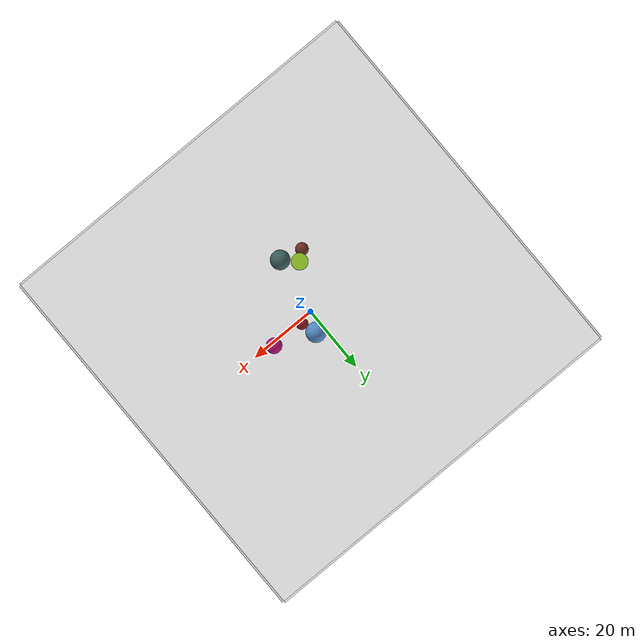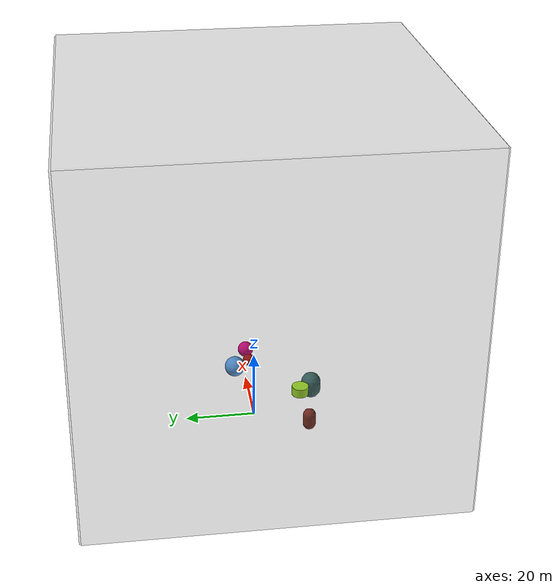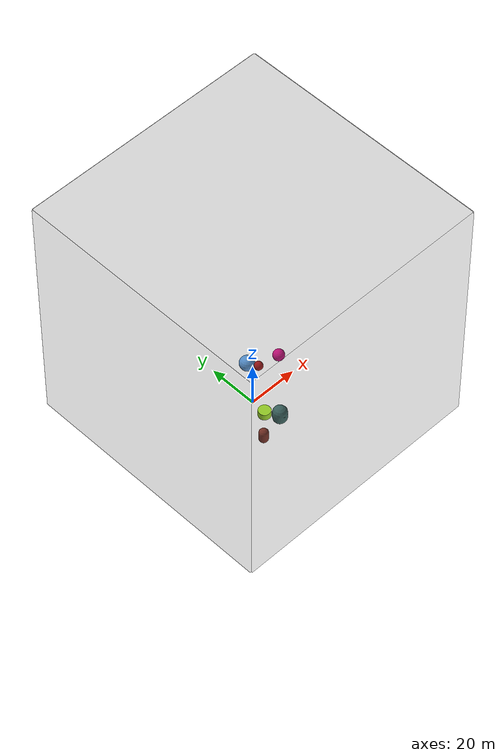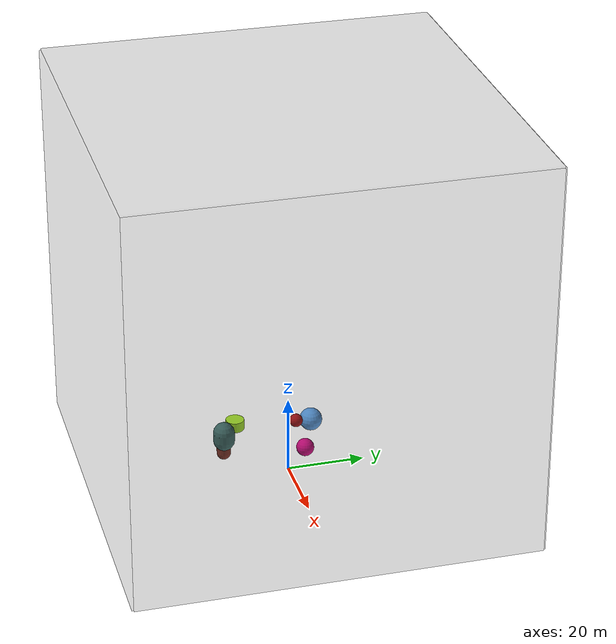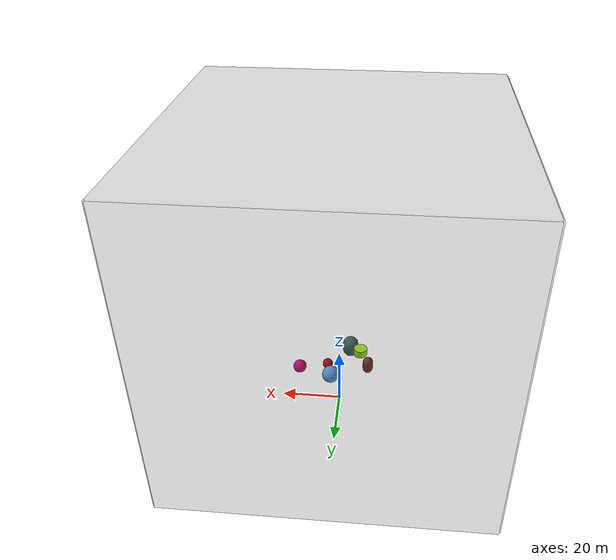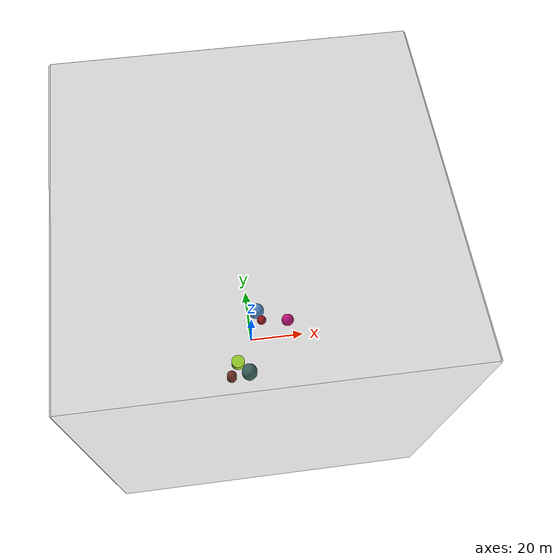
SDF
<!-- seed: 1718592691 -->
<sdf version='1.11'>
  <world name='world_0'>
    <gravity>0 0 -9.8066499999999994</gravity>
    <magnetic_field>5.5644999999999998e-06 2.2875799999999999e-05 -4.2388400000000002e-05</magnetic_field>
    <wind>
      <linear_velocity>2 4 9</linear_velocity>
    </wind>
    <physics default='false' type='ode'>
      <max_step_size>0.001</max_step_size>
      <real_time_factor>1</real_time_factor>
      <max_contacts>20</max_contacts>
    </physics>
    <model name='model_0'>
      <static>true</static>
      <self_collide>true</self_collide>
      <allow_auto_disable>true</allow_auto_disable>
      <enable_wind>false</enable_wind>
      <pose>-8.1204109110400129 -9.6773761119717694 2.20665761459373 0 0 0</pose>
      <link name='link_9696'>
        <pose>1.5841633516126237 -2.7465218656621193 9.2211319040780619 0 0 0</pose>
        <inertial>
          <pose>0 0 0 0 0 0</pose>
          <mass>1</mass>
          <inertia>
            <ixx>1</ixx>
            <ixy>0</ixy>
            <ixz>0</ixz>
            <iyy>1</iyy>
            <iyz>0</iyz>
            <izz>1</izz>
          </inertia>
        </inertial>
        <enable_wind>false</enable_wind>
        <collision name='collision_9696'>
          <pose>0 0 0 0 0 0</pose>
          <geometry>
            <cylinder>
              <radius>2.3817111365002956</radius>
              <length>2.6730405216484456</length>
            </cylinder>
          </geometry>
          <surface>
            <contact>
              <collide_bitmask>255</collide_bitmask>
            </contact>
            <friction>
              <ode>
                <mu>1</mu>
                <mu2>1</mu2>
                <slip1>0</slip1>
                <slip2>0</slip2>
                <fdir1>0 0 0</fdir1>
              </ode>
            </friction>
          </surface>
        </collision>
        <visual name='visual_9696'>
          <pose>0 0 0 0 0 0</pose>
          <geometry>
            <cylinder>
              <radius>2.3817111365002956</radius>
              <length>2.6730405216484456</length>
            </cylinder>
          </geometry>
          <cast_shadows>true</cast_shadows>
          <laser_retro>0</laser_retro>
          <transparency>0</transparency>
          <visibility_flags>4294967295</visibility_flags>
          <material>
            <ambient>0.699750125 0.96689111 0.163352266 1</ambient>
            <diffuse>0.699750125 0.96689111 0.163352266 1</diffuse>
            <specular>0 0 0 1</specular>
            <emissive>0 0 0 1</emissive>
            <render_order>0</render_order>
            <lighting>true</lighting>
            <double_sided>false</double_sided>
            <shader type='pixel'/>
          </material>
        </visual>
      </link>
      <link name='link_9697'>
        <pose>-1.1532210818182982 -5.1357976533158638 0.88036856735898339 0 0 0</pose>
        <inertial>
          <pose>0 0 0 0 0 0</pose>
          <mass>1</mass>
          <inertia>
            <ixx>1</ixx>
            <ixy>0</ixy>
            <ixz>0</ixz>
            <iyy>1</iyy>
            <iyz>0</iyz>
            <izz>1</izz>
          </inertia>
        </inertial>
        <enable_wind>false</enable_wind>
        <collision name='collision_9697'>
          <pose>0 0 0 0 0 0</pose>
          <geometry>
            <capsule>
              <radius>1.8394115626569623</radius>
              <length>2.7797236295579761</length>
            </capsule>
          </geometry>
          <surface>
            <contact>
              <collide_bitmask>255</collide_bitmask>
            </contact>
            <friction>
              <ode>
                <mu>1</mu>
                <mu2>1</mu2>
                <slip1>0</slip1>
                <slip2>0</slip2>
                <fdir1>0 0 0</fdir1>
              </ode>
            </friction>
          </surface>
        </collision>
        <visual name='visual_9697'>
          <pose>0 0 0 0 0 0</pose>
          <geometry>
            <capsule>
              <radius>1.8394115626569623</radius>
              <length>2.7797236295579761</length>
            </capsule>
          </geometry>
          <cast_shadows>true</cast_shadows>
          <laser_retro>0</laser_retro>
          <transparency>0</transparency>
          <visibility_flags>4294967295</visibility_flags>
          <material>
            <ambient>0.525312722 0.200585425 0.147615522 1</ambient>
            <diffuse>0.525312722 0.200585425 0.147615522 1</diffuse>
            <specular>0 0 0 1</specular>
            <emissive>0 0 0 1</emissive>
            <render_order>0</render_order>
            <lighting>true</lighting>
            <double_sided>false</double_sided>
            <shader type='pixel'/>
          </material>
        </visual>
      </link>
      <link name='link_9698'>
        <pose>5.4073401052223922 -6.5543886600089412 8.2231925246604547 0 0 0</pose>
        <inertial>
          <pose>0 0 0 0 0 0</pose>
          <mass>1</mass>
          <inertia>
            <ixx>1</ixx>
            <ixy>0</ixy>
            <ixz>0</ixz>
            <iyy>1</iyy>
            <iyz>0</iyz>
            <izz>1</izz>
          </inertia>
        </inertial>
        <enable_wind>false</enable_wind>
        <collision name='collision_9698'>
          <pose>0 0 0 0 0 0</pose>
          <geometry>
            <capsule>
              <radius>2.7746040245228922</radius>
              <length>2.1052765028635951</length>
            </capsule>
          </geometry>
          <surface>
            <contact>
              <collide_bitmask>255</collide_bitmask>
            </contact>
            <friction>
              <ode>
                <mu>1</mu>
                <mu2>1</mu2>
                <slip1>0</slip1>
                <slip2>0</slip2>
                <fdir1>0 0 0</fdir1>
              </ode>
            </friction>
          </surface>
        </collision>
        <visual name='visual_9698'>
          <pose>0 0 0 0 0 0</pose>
          <geometry>
            <capsule>
              <radius>2.7746040245228922</radius>
              <length>2.1052765028635951</length>
            </capsule>
          </geometry>
          <cast_shadows>true</cast_shadows>
          <laser_retro>0</laser_retro>
          <transparency>0</transparency>
          <visibility_flags>4294967295</visibility_flags>
          <material>
            <ambient>0.253123581 0.438459873 0.420266807 1</ambient>
            <diffuse>0.253123581 0.438459873 0.420266807 1</diffuse>
            <specular>0 0 0 1</specular>
            <emissive>0 0 0 1</emissive>
            <render_order>0</render_order>
            <lighting>true</lighting>
            <double_sided>false</double_sided>
            <shader type='pixel'/>
          </material>
        </visual>
      </link>
      <joint name='joint_6464' type='continuous'>
        <pose>0 0 0 0 0 0</pose>
        <parent>link_9696</parent>
        <child>link_9698</child>
        <axis>
          <xyz>0.41314901416877658 0.28695063132995124 0.86427265794465025</xyz>
          <limit>
            <lower>-inf</lower>
            <upper>inf</upper>
            <effort>inf</effort>
            <velocity>5.3353576984763009</velocity>
            <stiffness>100000000</stiffness>
            <dissipation>1</dissipation>
          </limit>
          <dynamics>
            <spring_reference>0</spring_reference>
            <spring_stiffness>0</spring_stiffness>
            <damping>0</damping>
            <friction>0</friction>
          </dynamics>
        </axis>
        <axis2>
          <xyz>0.54326392807299884 0.68251176936926639 0.48891920511177395</xyz>
          <limit>
            <lower>-inf</lower>
            <upper>inf</upper>
            <effort>inf</effort>
            <velocity>7.2660607916973499</velocity>
            <stiffness>100000000</stiffness>
            <dissipation>1</dissipation>
          </limit>
          <dynamics>
            <spring_reference>0</spring_reference>
            <spring_stiffness>0</spring_stiffness>
            <damping>0</damping>
            <friction>0</friction>
          </dynamics>
        </axis2>
      </joint>
      <joint name='joint_6465' type='gearbox'>
        <pose>0 0 0 0 0 0</pose>
        <parent>link_9698</parent>
        <child>link_9696</child>
        <axis>
          <xyz>0.52291159544644217 0.61548004280811153 0.5897014331444187</xyz>
          <limit>
            <lower>-inf</lower>
            <upper>inf</upper>
            <effort>inf</effort>
            <velocity>1.7194773542488562</velocity>
            <stiffness>100000000</stiffness>
            <dissipation>1</dissipation>
          </limit>
          <dynamics>
            <spring_reference>0</spring_reference>
            <spring_stiffness>0</spring_stiffness>
            <damping>0</damping>
            <friction>0</friction>
          </dynamics>
        </axis>
        <axis2>
          <xyz>0.86703691144737371 0.40425661770050586 0.29124488190034498</xyz>
          <limit>
            <lower>-inf</lower>
            <upper>inf</upper>
            <effort>inf</effort>
            <velocity>0.00076896144255322874</velocity>
            <stiffness>100000000</stiffness>
            <dissipation>1</dissipation>
          </limit>
          <dynamics>
            <spring_reference>0</spring_reference>
            <spring_stiffness>0</spring_stiffness>
            <damping>0</damping>
            <friction>0</friction>
          </dynamics>
        </axis2>
      </joint>
    </model>
    <model name='model_1'>
      <static>true</static>
      <self_collide>false</self_collide>
      <allow_auto_disable>true</allow_auto_disable>
      <enable_wind>false</enable_wind>
      <pose>9.5032296866960273 -0.65325296814477696 8.7417557123397653 0 0 0</pose>
      <link name='link_9699'>
        <pose>-7.0961905143635873 5.9685744626503094 6.5661362871623634 0 0 0</pose>
        <inertial>
          <pose>0 0 0 0 0 0</pose>
          <mass>1</mass>
          <inertia>
            <ixx>1</ixx>
            <ixy>0</ixy>
            <ixz>0</ixz>
            <iyy>1</iyy>
            <iyz>0</iyz>
            <izz>1</izz>
          </inertia>
        </inertial>
        <enable_wind>false</enable_wind>
        <collision name='collision_9699'>
          <pose>0 0 0 0 0 0</pose>
          <geometry>
            <sphere>
              <radius>2.8848990558518661</radius>
            </sphere>
          </geometry>
          <surface>
            <contact>
              <collide_bitmask>255</collide_bitmask>
            </contact>
            <friction>
              <ode>
                <mu>1</mu>
                <mu2>1</mu2>
                <slip1>0</slip1>
                <slip2>0</slip2>
                <fdir1>0 0 0</fdir1>
              </ode>
            </friction>
          </surface>
        </collision>
        <visual name='visual_9699'>
          <pose>0 0 0 0 0 0</pose>
          <geometry>
            <sphere>
              <radius>2.8848990558518661</radius>
            </sphere>
          </geometry>
          <cast_shadows>true</cast_shadows>
          <laser_retro>0</laser_retro>
          <transparency>0</transparency>
          <visibility_flags>4294967295</visibility_flags>
          <material>
            <ambient>0.371710867 0.652385652 0.941293836 1</ambient>
            <diffuse>0.371710867 0.652385652 0.941293836 1</diffuse>
            <specular>0 0 0 1</specular>
            <emissive>0 0 0 1</emissive>
            <render_order>0</render_order>
            <lighting>true</lighting>
            <double_sided>false</double_sided>
            <shader type='pixel'/>
          </material>
        </visual>
      </link>
      <link name='link_9700'>
        <pose>-5.6574966649034515 1.7047011655640159 7.5793375206651206 0 0 0</pose>
        <inertial>
          <pose>0 0 0 0 0 0</pose>
          <mass>1</mass>
          <inertia>
            <ixx>1</ixx>
            <ixy>0</ixy>
            <ixz>0</ixz>
            <iyy>1</iyy>
            <iyz>0</iyz>
            <izz>1</izz>
          </inertia>
        </inertial>
        <enable_wind>false</enable_wind>
        <collision name='collision_9700'>
          <pose>0 0 0 0 0 0</pose>
          <geometry>
            <sphere>
              <radius>1.6817120145282336</radius>
            </sphere>
          </geometry>
          <surface>
            <contact>
              <collide_bitmask>255</collide_bitmask>
            </contact>
            <friction>
              <ode>
                <mu>1</mu>
                <mu2>1</mu2>
                <slip1>0</slip1>
                <slip2>0</slip2>
                <fdir1>0 0 0</fdir1>
              </ode>
            </friction>
          </surface>
        </collision>
        <visual name='visual_9700'>
          <pose>0 0 0 0 0 0</pose>
          <geometry>
            <sphere>
              <radius>1.6817120145282336</radius>
            </sphere>
          </geometry>
          <cast_shadows>true</cast_shadows>
          <laser_retro>0</laser_retro>
          <transparency>0</transparency>
          <visibility_flags>4294967295</visibility_flags>
          <material>
            <ambient>0.689539611 0.0720888525 0.0754937828 1</ambient>
            <diffuse>0.689539611 0.0720888525 0.0754937828 1</diffuse>
            <specular>0 0 0 1</specular>
            <emissive>0 0 0 1</emissive>
            <render_order>0</render_order>
            <lighting>true</lighting>
            <double_sided>false</double_sided>
            <shader type='pixel'/>
          </material>
        </visual>
      </link>
      <link name='link_9701'>
        <pose>4.094248499603923 1.4675898733035417 5.388962168830429 0 0 0</pose>
        <inertial>
          <pose>0 0 0 0 0 0</pose>
          <mass>1</mass>
          <inertia>
            <ixx>1</ixx>
            <ixy>0</ixy>
            <ixz>0</ixz>
            <iyy>1</iyy>
            <iyz>0</iyz>
            <izz>1</izz>
          </inertia>
        </inertial>
        <enable_wind>false</enable_wind>
        <collision name='collision_9701'>
          <pose>0 0 0 0 0 0</pose>
          <geometry>
            <sphere>
              <radius>2.2300755786250877</radius>
            </sphere>
          </geometry>
          <surface>
            <contact>
              <collide_bitmask>255</collide_bitmask>
            </contact>
            <friction>
              <ode>
                <mu>1</mu>
                <mu2>1</mu2>
                <slip1>0</slip1>
                <slip2>0</slip2>
                <fdir1>0 0 0</fdir1>
              </ode>
            </friction>
          </surface>
        </collision>
        <visual name='visual_9701'>
          <pose>0 0 0 0 0 0</pose>
          <geometry>
            <sphere>
              <radius>2.2300755786250877</radius>
            </sphere>
          </geometry>
          <cast_shadows>true</cast_shadows>
          <laser_retro>0</laser_retro>
          <transparency>0</transparency>
          <visibility_flags>4294967295</visibility_flags>
          <material>
            <ambient>0.876877725 0.0401510485 0.535318196 1</ambient>
            <diffuse>0.876877725 0.0401510485 0.535318196 1</diffuse>
            <specular>0 0 0 1</specular>
            <emissive>0 0 0 1</emissive>
            <render_order>0</render_order>
            <lighting>true</lighting>
            <double_sided>false</double_sided>
            <shader type='pixel'/>
          </material>
        </visual>
      </link>
      <joint name='joint_6466' type='prismatic'>
        <pose>0 0 0 0 0 0</pose>
        <parent>link_9699</parent>
        <child>link_9701</child>
        <axis>
          <xyz>0.51466826741156957 0.71654724218080224 0.47082547110650258</xyz>
          <limit>
            <lower>-inf</lower>
            <upper>inf</upper>
            <effort>inf</effort>
            <velocity>1.0482295684641918</velocity>
            <stiffness>100000000</stiffness>
            <dissipation>1</dissipation>
          </limit>
          <dynamics>
            <spring_reference>0</spring_reference>
            <spring_stiffness>0</spring_stiffness>
            <damping>0</damping>
            <friction>0</friction>
          </dynamics>
        </axis>
        <axis2>
          <xyz>0.10629375378453293 0.80881554985711235 0.57837621339032452</xyz>
          <limit>
            <lower>-inf</lower>
            <upper>inf</upper>
            <effort>inf</effort>
            <velocity>6.89475069962573</velocity>
            <stiffness>100000000</stiffness>
            <dissipation>1</dissipation>
          </limit>
          <dynamics>
            <spring_reference>0</spring_reference>
            <spring_stiffness>0</spring_stiffness>
            <damping>0</damping>
            <friction>0</friction>
          </dynamics>
        </axis2>
      </joint>
      <joint name='joint_6467' type='prismatic'>
        <pose>0 0 0 0 0 0</pose>
        <parent>link_9699</parent>
        <child>link_9700</child>
        <axis>
          <xyz>0.16977039568173385 0.89468726959413269 0.41317393719384482</xyz>
          <limit>
            <lower>-inf</lower>
            <upper>inf</upper>
            <effort>inf</effort>
            <velocity>2.5044136041690148</velocity>
            <stiffness>100000000</stiffness>
            <dissipation>1</dissipation>
          </limit>
          <dynamics>
            <spring_reference>0</spring_reference>
            <spring_stiffness>0</spring_stiffness>
            <damping>0</damping>
            <friction>0</friction>
          </dynamics>
        </axis>
        <axis2>
          <xyz>0.72540996070820263 0.23086277062302663 0.64844642804597485</xyz>
          <limit>
            <lower>-inf</lower>
            <upper>inf</upper>
            <effort>inf</effort>
            <velocity>6.4464619127191956</velocity>
            <stiffness>100000000</stiffness>
            <dissipation>1</dissipation>
          </limit>
          <dynamics>
            <spring_reference>0</spring_reference>
            <spring_stiffness>0</spring_stiffness>
            <damping>0</damping>
            <friction>0</friction>
          </dynamics>
        </axis2>
      </joint>
    </model>
    <model name='ground_model'>
      <static>true</static>
      <self_collide>false</self_collide>
      <allow_auto_disable>true</allow_auto_disable>
      <enable_wind>false</enable_wind>
      <pose>0 0 0 0 0 0</pose>
      <link name='ground_link'>
        <pose>0 0 0 0 0 0</pose>
        <inertial>
          <pose>0 0 0 0 0 0</pose>
          <mass>1</mass>
          <inertia>
            <ixx>1</ixx>
            <ixy>0</ixy>
            <ixz>0</ixz>
            <iyy>1</iyy>
            <iyz>0</iyz>
            <izz>1</izz>
          </inertia>
        </inertial>
        <enable_wind>false</enable_wind>
        <collision name='ground_collision'>
          <pose>0 0 0 0 0 0</pose>
          <geometry>
            <plane>
              <normal>0 0 1</normal>
              <size>100 100</size>
            </plane>
          </geometry>
          <surface>
            <contact>
              <collide_bitmask>255</collide_bitmask>
            </contact>
            <friction>
              <ode>
                <mu>1</mu>
                <mu2>1</mu2>
                <slip1>0</slip1>
                <slip2>0</slip2>
                <fdir1>0 0 0</fdir1>
              </ode>
            </friction>
          </surface>
        </collision>
      </link>
    </model>
    <model name='ceiling_model'>
      <static>true</static>
      <self_collide>false</self_collide>
      <allow_auto_disable>true</allow_auto_disable>
      <enable_wind>false</enable_wind>
      <pose>0 0 100 0 0 0</pose>
      <link name='ceiling_link'>
        <pose>0 0 0 0 0 0</pose>
        <inertial>
          <pose>0 0 0 0 0 0</pose>
          <mass>1</mass>
          <inertia>
            <ixx>1</ixx>
            <ixy>0</ixy>
            <ixz>0</ixz>
            <iyy>1</iyy>
            <iyz>0</iyz>
            <izz>1</izz>
          </inertia>
        </inertial>
        <enable_wind>false</enable_wind>
        <collision name='ceiling_collision'>
          <pose>0 0 0 0 0 0</pose>
          <geometry>
            <box>
              <size>102 102 3</size>
            </box>
          </geometry>
          <surface>
            <contact>
              <collide_bitmask>255</collide_bitmask>
            </contact>
            <friction>
              <ode>
                <mu>1</mu>
                <mu2>1</mu2>
                <slip1>0</slip1>
                <slip2>0</slip2>
                <fdir1>0 0 0</fdir1>
              </ode>
            </friction>
          </surface>
        </collision>
        <visual name='ceiling_visual'>
          <pose>0 0 0 0 0 0</pose>
          <geometry>
            <box>
              <size>102 102 3</size>
            </box>
          </geometry>
          <cast_shadows>true</cast_shadows>
          <laser_retro>0</laser_retro>
          <transparency>0</transparency>
          <visibility_flags>4294967295</visibility_flags>
          <material>
            <ambient>0.200000003 0.200000003 0.200000003 0.200000003</ambient>
            <diffuse>0.200000003 0.200000003 0.200000003 0.200000003</diffuse>
            <specular>0 0 0 1</specular>
            <emissive>0 0 0 1</emissive>
            <render_order>0</render_order>
            <lighting>true</lighting>
            <double_sided>false</double_sided>
            <shader type='pixel'/>
          </material>
        </visual>
      </link>
    </model>
    <model name='west_model'>
      <static>true</static>
      <self_collide>false</self_collide>
      <allow_auto_disable>true</allow_auto_disable>
      <enable_wind>false</enable_wind>
      <pose>0 50 50 0 0 0</pose>
      <link name='west_link'>
        <pose>0 0 0 0 0 0</pose>
        <inertial>
          <pose>0 0 0 0 0 0</pose>
          <mass>1</mass>
          <inertia>
            <ixx>1</ixx>
            <ixy>0</ixy>
            <ixz>0</ixz>
            <iyy>1</iyy>
            <iyz>0</iyz>
            <izz>1</izz>
          </inertia>
        </inertial>
        <enable_wind>false</enable_wind>
        <collision name='west_collision'>
          <pose>0 0 0 0 0 0</pose>
          <geometry>
            <box>
              <size>102 3 102</size>
            </box>
          </geometry>
          <surface>
            <contact>
              <collide_bitmask>255</collide_bitmask>
            </contact>
            <friction>
              <ode>
                <mu>1</mu>
                <mu2>1</mu2>
                <slip1>0</slip1>
                <slip2>0</slip2>
                <fdir1>0 0 0</fdir1>
              </ode>
            </friction>
          </surface>
        </collision>
        <visual name='west_visual'>
          <pose>0 0 0 0 0 0</pose>
          <geometry>
            <box>
              <size>102 3 102</size>
            </box>
          </geometry>
          <cast_shadows>true</cast_shadows>
          <laser_retro>0</laser_retro>
          <transparency>0</transparency>
          <visibility_flags>4294967295</visibility_flags>
          <material>
            <ambient>0.200000003 0.200000003 0.200000003 0.200000003</ambient>
            <diffuse>0.200000003 0.200000003 0.200000003 0.200000003</diffuse>
            <specular>0 0 0 1</specular>
            <emissive>0 0 0 1</emissive>
            <render_order>0</render_order>
            <lighting>true</lighting>
            <double_sided>false</double_sided>
            <shader type='pixel'/>
          </material>
        </visual>
      </link>
    </model>
    <model name='east_model'>
      <static>true</static>
      <self_collide>false</self_collide>
      <allow_auto_disable>true</allow_auto_disable>
      <enable_wind>false</enable_wind>
      <pose>0 -50 50 0 0 0</pose>
      <link name='east_link'>
        <pose>0 0 0 0 0 0</pose>
        <inertial>
          <pose>0 0 0 0 0 0</pose>
          <mass>1</mass>
          <inertia>
            <ixx>1</ixx>
            <ixy>0</ixy>
            <ixz>0</ixz>
            <iyy>1</iyy>
            <iyz>0</iyz>
            <izz>1</izz>
          </inertia>
        </inertial>
        <enable_wind>false</enable_wind>
        <collision name='east_collision'>
          <pose>0 0 0 0 0 0</pose>
          <geometry>
            <box>
              <size>102 3 102</size>
            </box>
          </geometry>
          <surface>
            <contact>
              <collide_bitmask>255</collide_bitmask>
            </contact>
            <friction>
              <ode>
                <mu>1</mu>
                <mu2>1</mu2>
                <slip1>0</slip1>
                <slip2>0</slip2>
                <fdir1>0 0 0</fdir1>
              </ode>
            </friction>
          </surface>
        </collision>
        <visual name='east_visual'>
          <pose>0 0 0 0 0 0</pose>
          <geometry>
            <box>
              <size>102 3 102</size>
            </box>
          </geometry>
          <cast_shadows>true</cast_shadows>
          <laser_retro>0</laser_retro>
          <transparency>0</transparency>
          <visibility_flags>4294967295</visibility_flags>
          <material>
            <ambient>0.200000003 0.200000003 0.200000003 0.200000003</ambient>
            <diffuse>0.200000003 0.200000003 0.200000003 0.200000003</diffuse>
            <specular>0 0 0 1</specular>
            <emissive>0 0 0 1</emissive>
            <render_order>0</render_order>
            <lighting>true</lighting>
            <double_sided>false</double_sided>
            <shader type='pixel'/>
          </material>
        </visual>
      </link>
    </model>
    <model name='north_model'>
      <static>true</static>
      <self_collide>false</self_collide>
      <allow_auto_disable>true</allow_auto_disable>
      <enable_wind>false</enable_wind>
      <pose>50 0 50 0 0 0</pose>
      <link name='north_link'>
        <pose>0 0 0 0 0 0</pose>
        <inertial>
          <pose>0 0 0 0 0 0</pose>
          <mass>1</mass>
          <inertia>
            <ixx>1</ixx>
            <ixy>0</ixy>
            <ixz>0</ixz>
            <iyy>1</iyy>
            <iyz>0</iyz>
            <izz>1</izz>
          </inertia>
        </inertial>
        <enable_wind>false</enable_wind>
        <collision name='north_collision'>
          <pose>0 0 0 0 0 0</pose>
          <geometry>
            <box>
              <size>3 102 102</size>
            </box>
          </geometry>
          <surface>
            <contact>
              <collide_bitmask>255</collide_bitmask>
            </contact>
            <friction>
              <ode>
                <mu>1</mu>
                <mu2>1</mu2>
                <slip1>0</slip1>
                <slip2>0</slip2>
                <fdir1>0 0 0</fdir1>
              </ode>
            </friction>
          </surface>
        </collision>
        <visual name='north_visual'>
          <pose>0 0 0 0 0 0</pose>
          <geometry>
            <box>
              <size>3 102 102</size>
            </box>
          </geometry>
          <cast_shadows>true</cast_shadows>
          <laser_retro>0</laser_retro>
          <transparency>0</transparency>
          <visibility_flags>4294967295</visibility_flags>
          <material>
            <ambient>0.200000003 0.200000003 0.200000003 0.200000003</ambient>
            <diffuse>0.200000003 0.200000003 0.200000003 0.200000003</diffuse>
            <specular>0 0 0 1</specular>
            <emissive>0 0 0 1</emissive>
            <render_order>0</render_order>
            <lighting>true</lighting>
            <double_sided>false</double_sided>
            <shader type='pixel'/>
          </material>
        </visual>
      </link>
    </model>
    <model name='south_model'>
      <static>true</static>
      <self_collide>false</self_collide>
      <allow_auto_disable>true</allow_auto_disable>
      <enable_wind>false</enable_wind>
      <pose>-50 0 50 0 0 0</pose>
      <link name='south_link'>
        <pose>0 0 0 0 0 0</pose>
        <inertial>
          <pose>0 0 0 0 0 0</pose>
          <mass>1</mass>
          <inertia>
            <ixx>1</ixx>
            <ixy>0</ixy>
            <ixz>0</ixz>
            <iyy>1</iyy>
            <iyz>0</iyz>
            <izz>1</izz>
          </inertia>
        </inertial>
        <enable_wind>false</enable_wind>
        <collision name='south_collision'>
          <pose>0 0 0 0 0 0</pose>
          <geometry>
            <box>
              <size>3 102 102</size>
            </box>
          </geometry>
          <surface>
            <contact>
              <collide_bitmask>255</collide_bitmask>
            </contact>
            <friction>
              <ode>
                <mu>1</mu>
                <mu2>1</mu2>
                <slip1>0</slip1>
                <slip2>0</slip2>
                <fdir1>0 0 0</fdir1>
              </ode>
            </friction>
          </surface>
        </collision>
        <visual name='south_visual'>
          <pose>0 0 0 0 0 0</pose>
          <geometry>
            <box>
              <size>3 102 102</size>
            </box>
          </geometry>
          <cast_shadows>true</cast_shadows>
          <laser_retro>0</laser_retro>
          <transparency>0</transparency>
          <visibility_flags>4294967295</visibility_flags>
          <material>
            <ambient>0.200000003 0.200000003 0.200000003 0.200000003</ambient>
            <diffuse>0.200000003 0.200000003 0.200000003 0.200000003</diffuse>
            <specular>0 0 0 1</specular>
            <emissive>0 0 0 1</emissive>
            <render_order>0</render_order>
            <lighting>true</lighting>
            <double_sided>false</double_sided>
            <shader type='pixel'/>
          </material>
        </visual>
      </link>
    </model>
    <atmosphere type='adiabatic'>
      <temperature>288.14999999999998</temperature>
      <pressure>101325</pressure>
      <temperature_gradient>-0.0064999999999999997</temperature_gradient>
    </atmosphere>
    <scene>
      <ambient>0.400000006 0.400000006 0.400000006 1</ambient>
      <background>0.699999988 0.699999988 0.699999988 1</background>
      <grid>true</grid>
      <origin_visual>true</origin_visual>
      <shadows>true</shadows>
    </scene>
  </world>
</sdf>
